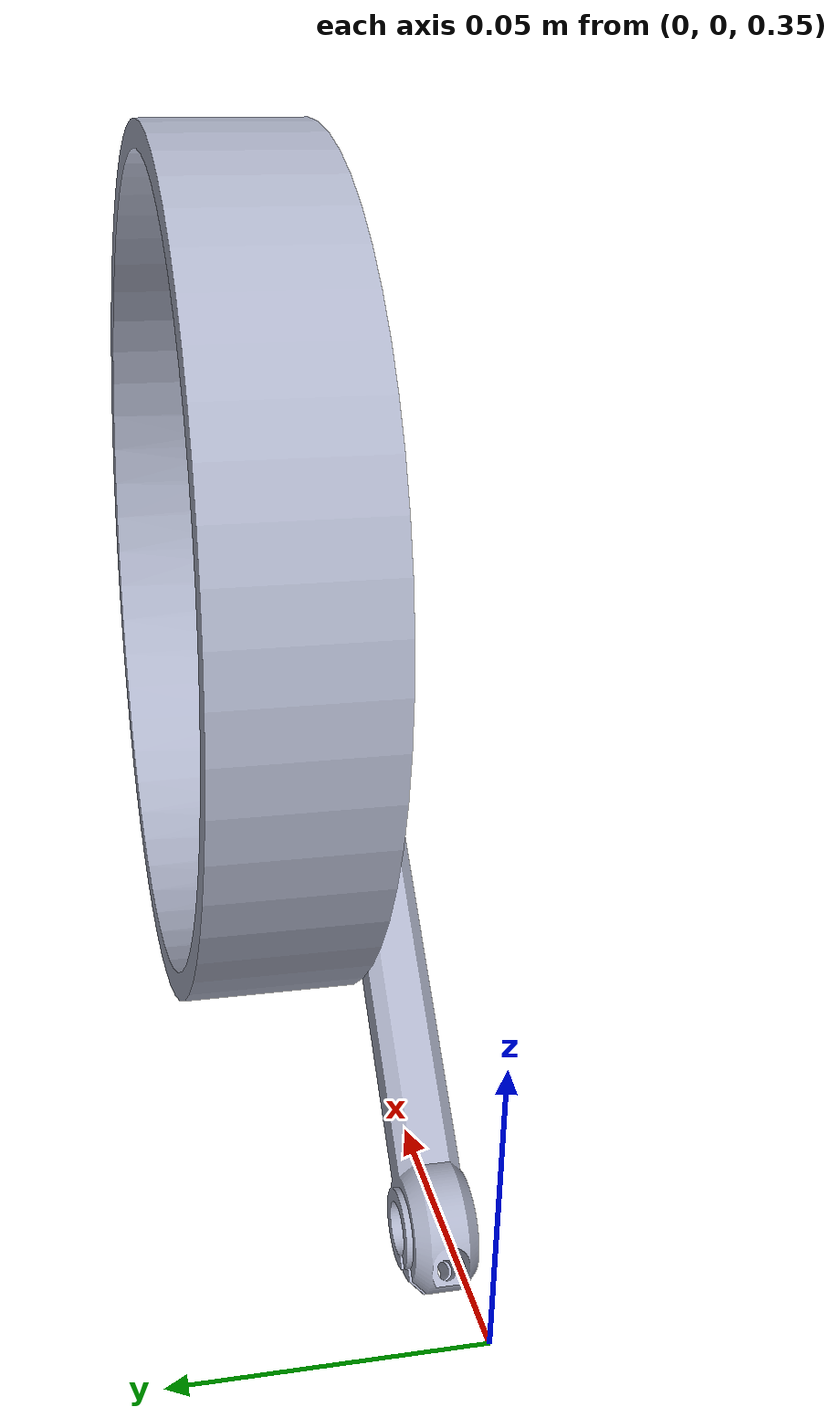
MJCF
<mujoco model="flywheel pendulum scene">
  <include file="flywheel_pendulum.xml"/>

  <statistic center="0 0 0.1" extent="0.8"/>

  <visual>
    <headlight diffuse="0.6 0.6 0.6" ambient="0.3 0.3 0.3" specular="0 0 0"/>
    <rgba haze="0.15 0.25 0.35 1"/>
    <global azimuth="-130" elevation="-20"/>
  </visual>

  <asset>
    <texture type="skybox" builtin="gradient" rgb1="0.3 0.5 0.7" rgb2="0 0 0" width="512" height="3072"/>
    <texture type="2d" name="groundplane" builtin="checker" mark="edge" rgb1="0.2 0.3 0.4" rgb2="0.1 0.2 0.3"
      markrgb="0.8 0.8 0.8" width="300" height="300"/>
    <material name="groundplane" texture="groundplane" texuniform="true" texrepeat="5 5" reflectance="0.2"/>
  </asset>

  <worldbody>
    <light pos="0 0 1.5" dir="0 0 -1" directional="true"/>
    <geom name="floor" size="0 0 0.05" type="plane" material="groundplane"/>
  </worldbody>
</mujoco>

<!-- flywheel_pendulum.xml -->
<mujoco model="flywheel_pendulum">
  <compiler angle="radian" meshdir="assets" autolimits="true"/>

  <option cone="elliptic" impratio="100"/>

  <default>
    <default class="flywheel_pendulum">
      <joint damping="0.1" frictionloss="0"/>
    </default>
    <default class="visual">
      <geom type="mesh" group="2" contype="0" conaffinity="0"/>
    </default>
    <default class="collision">
      <geom type="cylinder" group="3" mass="0" density="0"/>
    </default>
  </default>

  <asset>
    <material name="metal" rgba=".9 .95 .95 1"/>
    <material name="black" rgba="0 0 0 1"/>
    <material name="white" rgba="1 1 1 1"/>
    <material name="gray" rgba="0.671705 0.692426 0.774270 1"/>

    <mesh file="pendulum_arm.stl"/>
    <mesh file="reaction_wheel.stl"/>

  </asset>

  <worldbody>
    <body name="base" pos="0.1 0 0.445" childclass="flywheel_pendulum">

      <body name="pendulum" pos="0.0 0.0 0">

        <joint name="pendulum_joint" axis="0 1 0" pos="-0.085 0 -0.085"/>
        <geom mesh="pendulum_arm" material="gray" class="visual" mass="0.2"/>

        <body name="flywheel" pos="0 0.01 0.0">

          <joint name="flywheel_joint" axis="0 1 0"/>
          <geom mesh="reaction_wheel" material="gray" class="visual"  mass="1"/>
        </body>

      </body>

    </body>
  </worldbody>

  <actuator>
    <motor name="pendulum_joint" joint="pendulum_joint" ctrlrange="-30 30"/>
    <motor name="flywheel_joint" joint="flywheel_joint" ctrlrange="-30 30"/>
  </actuator>

  <keyframe>
    <key name="home" qpos="0 0"/>
  </keyframe>
</mujoco>
